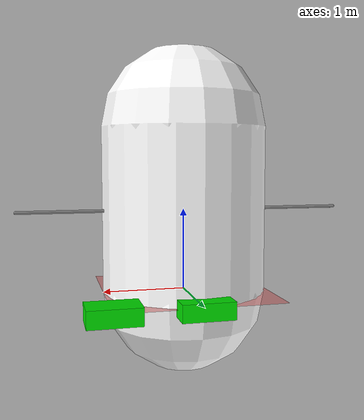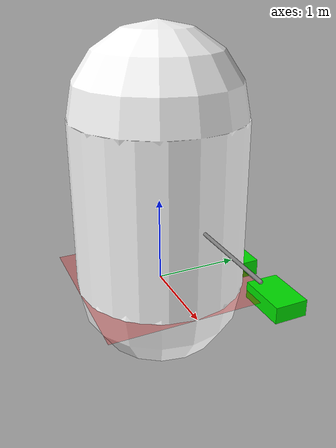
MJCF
<mujoco>
   <asset>
     <material name="material_1" emission="0.0" specular="0.3"
              rgba="0.36 0.36 0.36 1"/>
     <material name="material_defaults"/>
   </asset>
   <default>
     <geom type="capsule" mass="1"/>
   </default>
   <option gravity="0 0 -9.8000000000000007" wind="2 1 7.6" magnetic="5.5644999999999998e-06 2.2875799999999999e-05 -4.2388400000000002e-05"/>

   <worldbody>
      <light diffuse=".5 .5 .5" pos="0 0 3" dir="0 0 -1" cutoff="45" exponent="10"
             attenuation="0.0 0.01 0.001" specular="0.2 0.2 0.2"/>
      <geom type="plane" size="1 1 0.1" rgba=".9 0 0 1" friction="0.9 0.001 0.001"/>
      <geom name="rail1" type="capsule" pos="0  .07 1" zaxis="1 0 0" size="0.02 2"/>
      <camera name="fixed" pos="0 -6 2" zaxis="0 -1 0"/>
      <camera name="target_camera" pos="0 -6 2" zaxis="0 -1 0" target="body2"/>
      <body pos="0 0 1">
         <camera pos="0 -6 2" zaxis="0 -1 0"/>
         <camera pos="0 -6 2" zaxis="0 -1 0"/>
         <freejoint name="freejoint1"/>
         <inertial pos="0 1 0" mass="2" fullinertia="2 2 2 0 0 0"/>
         <geom type="box" pos="0.1 0.3 0.2" size=".1 .2 .3" material="material_1"/>
         <geom name="who_is_this" fromto="0 0 0 0 0 1" size="0.05"/>
         <geom name="capsule" type="capsule" mass="1" fromto="0 -0.06 0 0 0.06 0" size="0.05"/>
         <geom name="default_mat" size="1 1" material="material_defaults"/>
      </body>
      <body pos="0 1 0" name="body2" quat="0.5 0 0.5 0">
         <freejoint name="freejoint2"/>
         <inertial pos="1 2 3" euler="0 0 0" mass="2" diaginertia="0.026026 0.023326 0.011595"/>
         <geom type="box" name="col_body2" pos="0 0 0" group="3" size=".1 .2 .3" rgba="0 .9 0 1"/>
         <geom type="box" name="visual_body2" pos="0 0 0" group="0" size=".1 .2 .3" rgba="0 .9 0 1"/>
         <body pos="0 0 1" name="body3">
           <geom type="box" name="visual_body3" pos="0 0 0" size=".1 .2 .3" rgba="0 .9 0 1"/>
         </body>
         <light name="directional" directional="true" castshadow="true" pos="0 0 10"
                dir="0.5 0.2 -0.0" attenuation="0.0 0.01 0.001" diffuse="0.8 0.8 0.8"
                specular="0.2 0.2 0.2" active="false"/>
      </body>
    </worldbody>
</mujoco>
